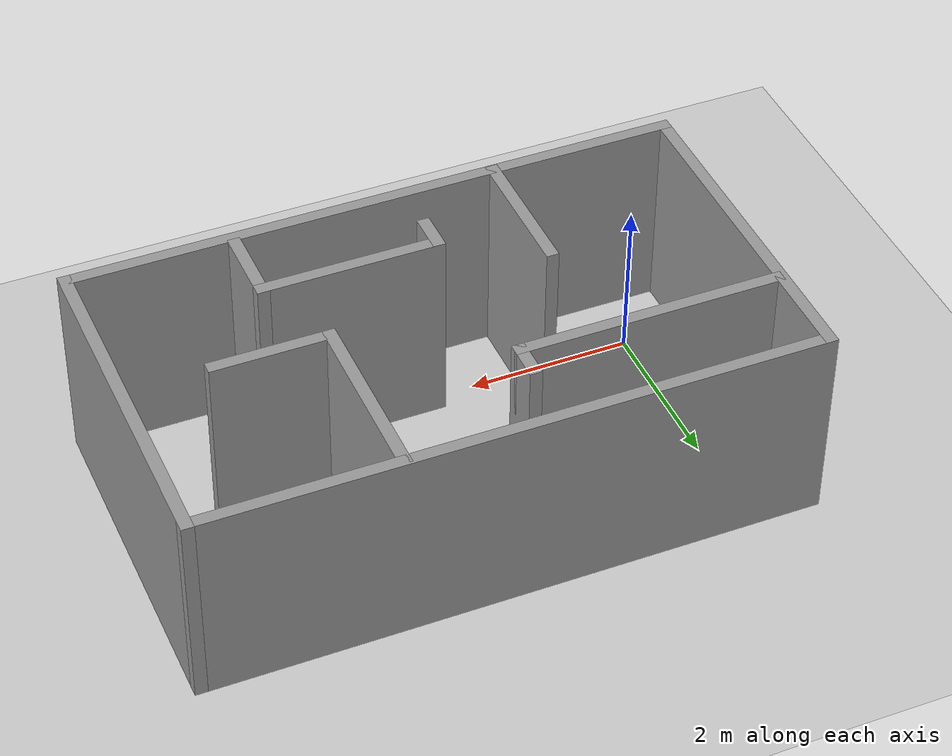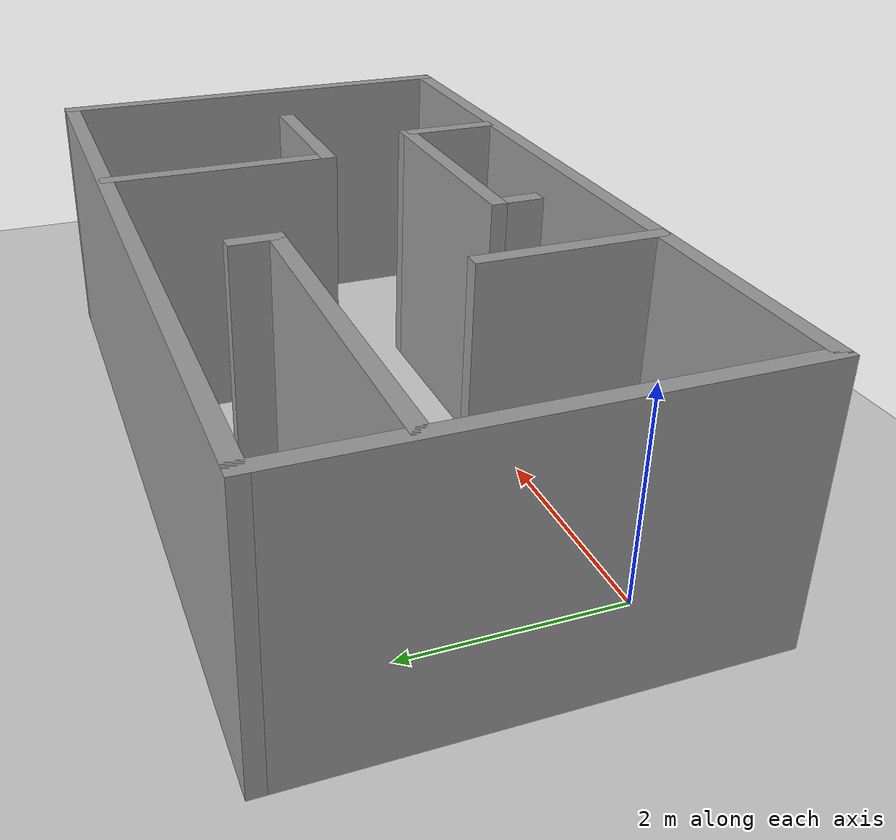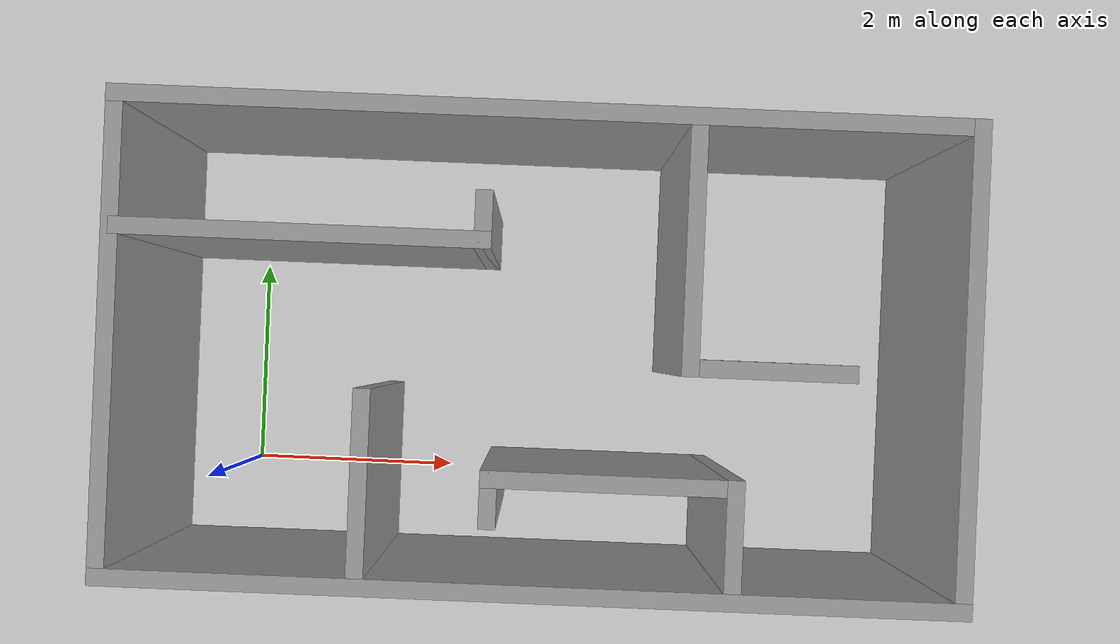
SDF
<sdf version="1.7">
 <world name="default">
  <light name="sun" type="directional">
   <pose>0 0 10 0 -0 0</pose>
   <diffuse>0.8 0.8 0.8 1</diffuse>
   <specular>0.2 0.2 0.2 1</specular>
   <attenuation>
    <range>1000</range>
    <constant>0.9</constant>
    <linear>0.01</linear>
    <quadratic>0.001</quadratic>
   </attenuation>
   <direction>-0.5 0.1 -0.9</direction>
   <spot><inner_angle>0</inner_angle><outer_angle>0</outer_angle><falloff>0</falloff></spot>
  </light>
  <model name="ground_plane">
   <static>1</static>
   <link name="link">
    <collision name="collision">
     <geometry><plane><normal>0 0 1</normal><size>100 100</size></plane></geometry>
     <surface>
      <contact><collide_bitmask>65535</collide_bitmask></contact>
      <friction><ode><mu>100</mu><mu2>50</mu2></ode></friction>
     </surface>
    </collision>
    <visual name="visual">
     <cast_shadows>0</cast_shadows>
     <geometry><plane><normal>0 0 1</normal><size>100 100</size></plane></geometry>
     <material>
      <script><uri>file://media/materials/scripts/gazebo.material</uri><name>Gazebo/Grey</name></script>
     </material>
    </visual>
   </link>
  </model>
  <gravity>0 0 -9.8</gravity>
  <magnetic_field>6e-06 2.3e-05 -4.2e-05</magnetic_field>
  <atmosphere type="adiabatic"/>
  <physics type="ode">
   <max_step_size>0.001</max_step_size>
   <real_time_factor>1</real_time_factor>
   <real_time_update_rate>1000</real_time_update_rate>
  </physics>
  <scene><ambient>0.4 0.4 0.4 1</ambient><background>0.7 0.7 0.7 1</background><shadows>1</shadows></scene>
  <audio><device>default</device></audio>
  <spherical_coordinates>
   <surface_model>EARTH_WGS84</surface_model>
   <latitude_deg>0</latitude_deg>
   <longitude_deg>0</longitude_deg>
   <elevation>0</elevation>
   <heading_deg>0</heading_deg>
  </spherical_coordinates>
  <model name="Model1">
   <pose>2.88355 2.17236 0 0 -0 0</pose>
   <link name="Wall_0">
    <collision name="Wall_0_Collision">
     <geometry><box><size>7.5 0.15 2.5</size></box></geometry>
     <pose>0 0 1.25 0 -0 0</pose>
    </collision>
    <visual name="Wall_0_Visual">
     <pose>0 0 1.25 0 -0 0</pose>
     <geometry><box><size>7.5 0.15 2.5</size></box></geometry>
     <material>
      <script><uri>file://media/materials/scripts/gazebo.material</uri><name>Gazebo/Grey</name></script>
      <ambient>1 1 1 1</ambient>
     </material>
     <meta><layer>0</layer></meta>
    </visual>
    <pose>0 -3.0075 0 0 -0 0</pose>
   </link>
   <link name="Wall_1">
    <collision name="Wall_1_Collision">
     <geometry><box><size>4.25 0.15 2.5</size></box></geometry>
     <pose>0 0 1.25 0 -0 0</pose>
    </collision>
    <visual name="Wall_1_Visual">
     <pose>0 0 1.25 0 -0 0</pose>
     <geometry><box><size>4.25 0.15 2.5</size></box></geometry>
     <material>
      <script><uri>file://media/materials/scripts/gazebo.material</uri><name>Gazebo/Grey</name></script>
      <ambient>1 1 1 1</ambient>
     </material>
     <meta><layer>0</layer></meta>
    </visual>
    <pose>3.675 -0.9575 0 0 -0 1.5708</pose>
   </link>
   <link name="Wall_10">
    <collision name="Wall_10_Collision">
     <geometry><box><size>1 0.15 2.5</size></box></geometry>
     <pose>0 0 1.25 0 -0 0</pose>
    </collision>
    <visual name="Wall_10_Visual">
     <pose>0 0 1.25 0 -0 0</pose>
     <geometry><box><size>1 0.15 2.5</size></box></geometry>
     <material>
      <script><uri>file://media/materials/scripts/gazebo.material</uri><name>Gazebo/Grey</name></script>
      <ambient>1 1 1 1</ambient>
     </material>
     <meta><layer>0</layer></meta>
    </visual>
    <pose>1.715 -2.4725 0 0 -0 1.5708</pose>
   </link>
   <link name="Wall_11">
    <collision name="Wall_11_Collision">
     <geometry><box><size>2.25 0.15 2.5</size></box></geometry>
     <pose>0 0 1.25 0 -0 0</pose>
    </collision>
    <visual name="Wall_11_Visual">
     <pose>0 0 1.25 0 -0 0</pose>
     <geometry><box><size>2.25 0.15 2.5</size></box></geometry>
     <material>
      <script><uri>file://media/materials/scripts/gazebo.material</uri><name>Gazebo/Grey</name></script>
      <ambient>1 1 1 1</ambient>
     </material>
     <meta><layer>0</layer></meta>
    </visual>
    <pose>0.665 -2.0475 0 0 -0 3.14159</pose>
   </link>
   <link name="Wall_12">
    <collision name="Wall_12_Collision">
     <geometry><box><size>0.5 0.15 2.5</size></box></geometry>
     <pose>0 0 1.25 0 -0 0</pose>
    </collision>
    <visual name="Wall_12_Visual">
     <pose>0 0 1.25 0 -0 0</pose>
     <geometry><box><size>0.5 0.15 2.5</size></box></geometry>
     <material>
      <script><uri>file://media/materials/scripts/gazebo.material</uri><name>Gazebo/Grey</name></script>
      <ambient>1 1 1 1</ambient>
     </material>
     <meta><layer>0</layer></meta>
    </visual>
    <pose>-0.385 -2.2225 0 0 -0 -1.5708</pose>
   </link>
   <link name="Wall_14">
    <collision name="Wall_14_Collision">
     <geometry><box><size>3.25 0.15 2.5</size></box></geometry>
     <pose>0 0 1.25 0 -0 0</pose>
    </collision>
    <visual name="Wall_14_Visual">
     <pose>0 0 1.25 0 -0 0</pose>
     <geometry><box><size>3.25 0.15 2.5</size></box></geometry>
     <material>
      <script><uri>file://media/materials/scripts/gazebo.material</uri><name>Gazebo/Grey</name></script>
      <ambient>1 1 1 1</ambient>
     </material>
     <meta><layer>0</layer></meta>
    </visual>
    <pose>-2.065 -0.0275 0 0 -0 0</pose>
   </link>
   <link name="Wall_15">
    <collision name="Wall_15_Collision">
     <geometry><box><size>0.5 0.15 2.5</size></box></geometry>
     <pose>0 0 1.25 0 -0 0</pose>
    </collision>
    <visual name="Wall_15_Visual">
     <pose>0 0 1.25 0 -0 0</pose>
     <geometry><box><size>0.5 0.15 2.5</size></box></geometry>
     <material>
      <script><uri>file://media/materials/scripts/gazebo.material</uri><name>Gazebo/Grey</name></script>
      <ambient>1 1 1 1</ambient>
     </material>
     <meta><layer>0</layer></meta>
    </visual>
    <pose>-0.515 0.1475 0 0 -0 1.5708</pose>
   </link>
   <link name="Wall_2">
    <collision name="Wall_2_Collision">
     <geometry><box><size>7.5 0.15 2.5</size></box></geometry>
     <pose>0 0 1.25 0 -0 0</pose>
    </collision>
    <visual name="Wall_2_Visual">
     <pose>0 0 1.25 0 -0 0</pose>
     <geometry><box><size>7.5 0.15 2.5</size></box></geometry>
     <material>
      <script><uri>file://media/materials/scripts/gazebo.material</uri><name>Gazebo/Grey</name></script>
      <ambient>1 1 1 1</ambient>
     </material>
     <meta><layer>0</layer></meta>
    </visual>
    <pose>0 1.0925 0 0 -0 3.14159</pose>
   </link>
   <link name="Wall_3">
    <collision name="Wall_3_Collision">
     <geometry><box><size>4.25 0.15 2.5</size></box></geometry>
     <pose>0 0 1.25 0 -0 0</pose>
    </collision>
    <visual name="Wall_3_Visual">
     <pose>0 0 1.25 0 -0 0</pose>
     <geometry><box><size>4.25 0.15 2.5</size></box></geometry>
     <material>
      <script><uri>file://media/materials/scripts/gazebo.material</uri><name>Gazebo/Grey</name></script>
      <ambient>1 1 1 1</ambient>
     </material>
     <meta><layer>0</layer></meta>
    </visual>
    <pose>-3.675 -0.9575 0 0 -0 -1.5708</pose>
   </link>
   <link name="Wall_5">
    <collision name="Wall_5_Collision">
     <geometry><box><size>1.75 0.15 2.5</size></box></geometry>
     <pose>0 0 1.25 0 -0 0</pose>
    </collision>
    <visual name="Wall_5_Visual">
     <pose>0 0 1.25 0 -0 0</pose>
     <geometry><box><size>1.75 0.15 2.5</size></box></geometry>
     <material>
      <script><uri>file://media/materials/scripts/gazebo.material</uri><name>Gazebo/Grey</name></script>
      <ambient>1 1 1 1</ambient>
     </material>
     <meta><layer>0</layer></meta>
    </visual>
    <pose>-1.485 -2.1975 0 0 -0 1.5708</pose>
   </link>
   <link name="Wall_7">
    <collision name="Wall_7_Collision">
     <geometry><box><size>2.25 0.15 2.5</size></box></geometry>
     <pose>0 0 1.25 0 -0 0</pose>
    </collision>
    <visual name="Wall_7_Visual">
     <pose>0 0 1.25 0 -0 0</pose>
     <geometry><box><size>2.25 0.15 2.5</size></box></geometry>
     <material>
      <script><uri>file://media/materials/scripts/gazebo.material</uri><name>Gazebo/Grey</name></script>
      <ambient>1 1 1 1</ambient>
     </material>
     <meta><layer>0</layer></meta>
    </visual>
    <pose>1.285 0.0125 0 0 -0 -1.5708</pose>
   </link>
   <link name="Wall_8">
    <collision name="Wall_8_Collision">
     <geometry><box><size>1.5 0.15 2.5</size></box></geometry>
     <pose>0 0 1.25 0 -0 0</pose>
    </collision>
    <visual name="Wall_8_Visual">
     <pose>0 0 1.25 0 -0 0</pose>
     <geometry><box><size>1.5 0.15 2.5</size></box></geometry>
     <material>
      <script><uri>file://media/materials/scripts/gazebo.material</uri><name>Gazebo/Grey</name></script>
      <ambient>1 1 1 1</ambient>
     </material>
     <meta><layer>0</layer></meta>
    </visual>
    <pose>1.96 -1.0375 0 0 -0 0</pose>
   </link>
   <static>1</static>
  </model>
 </world>
</sdf>
